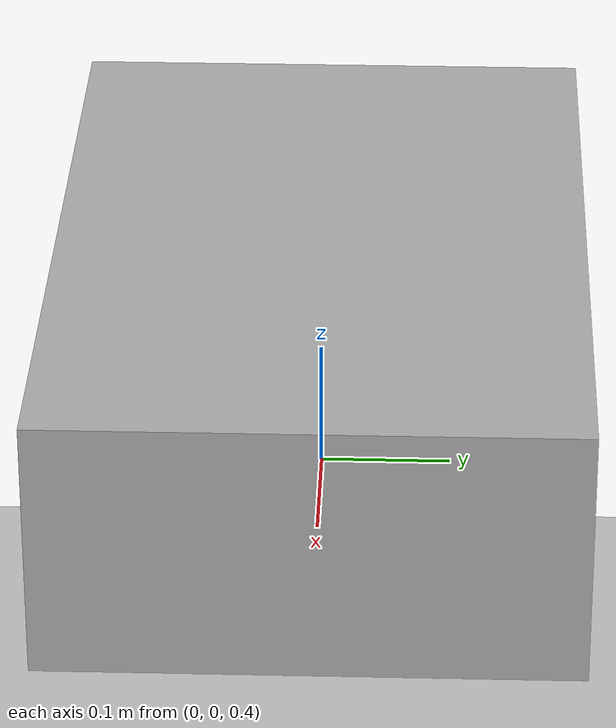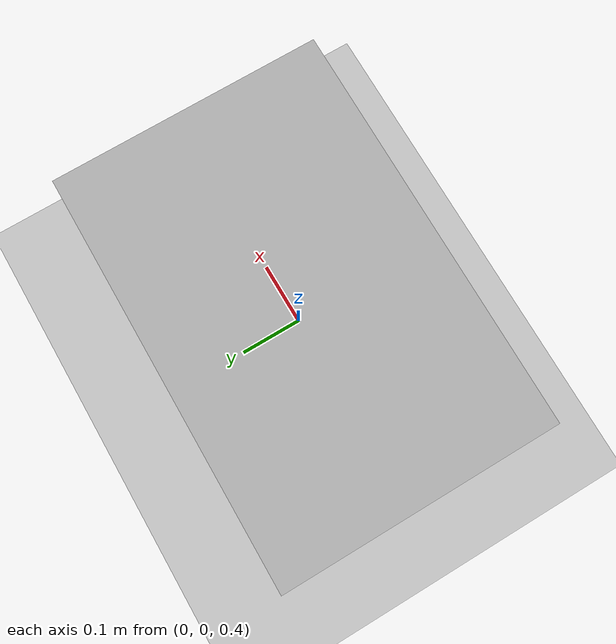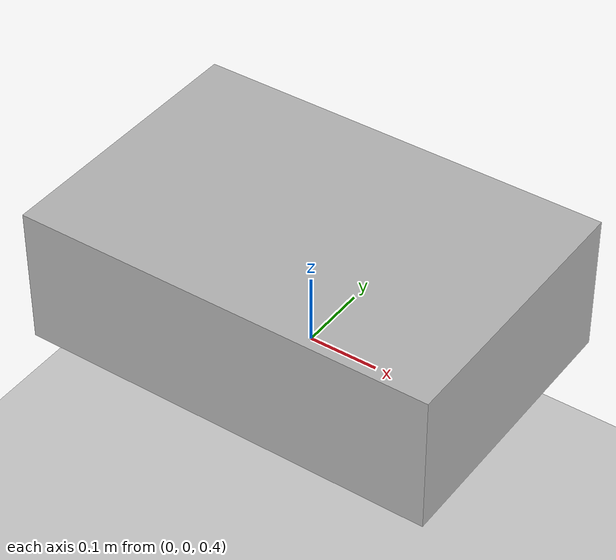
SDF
<?xml version="1.0" ?>
<sdf version="1.9">
  <world name="apex_test_world">
    <physics name="default_physics" type="ode"/>

    <light type="directional" name="sun">
      <cast_shadows>true</cast_shadows>
      <pose>0 0 10 0 0 0</pose>
      <diffuse>0.8 0.8 0.8 1</diffuse>
      <specular>0.2 0.2 0.2 1</specular>
      <direction>-0.5 0.1 -0.9</direction>
    </light>

    <model name="ground_plane">
      <static>true</static>
      <link name="link">
        <collision name="collision">
          <geometry><plane><normal>0 0 1</normal><size>100 100</size></plane></geometry>
        </collision>
        <visual name="visual">
          <geometry><plane><normal>0 0 1</normal><size>100 100</size></plane></geometry>
          <material><ambient>0.8 0.8 0.8 1</ambient></material>
        </visual>
      </link>
    </model>

    <model name="apex_robot">
      <pose>0 0 0.5 0 0 0</pose>
      <link name="base_link">
        <inertial>
          <mass>10.0</mass>
          <inertia><ixx>0.1</ixx><iyy>0.1</iyy><izz>0.1</izz></inertia>
        </inertial>
        <visual name="base_visual">
          <geometry><box><size>0.6 0.4 0.2</size></box></geometry>
        </visual>
        <collision name="base_collision">
          <geometry><box><size>0.6 0.4 0.2</size></box></geometry>
        </collision>
        <sensor name="lidar" type="ray">
          <pose>0.3 0 0.1 0 0 0</pose>
          <always_on>true</always_on>
          <visualize>true</visualize>
          <update_rate>10</update_rate>
          <ray>
            <scan>
              <horizontal><samples>360</samples><resolution>1.0</resolution><min_angle>-3.14</min_angle><max_angle>3.14</max_angle></horizontal>
            </scan>
            <range><min>0.1</min><max>30.0</max></range>
          </ray>
        </sensor>
        <sensor name="imu" type="imu">
          <always_on>1</always_on>
          <update_rate>100</update_rate>
        </sensor>
      </link>
      <plugin name="diff_drive" filename="libgazebo_ros_diff_drive.so">
        <ros><namespace>/apex_autonomy</namespace></ros>
        <left_joint>left_wheel_joint</left_joint>
        <right_joint>right_wheel_joint</right_joint>
      </plugin>
    </model>
  </world>
</sdf>
